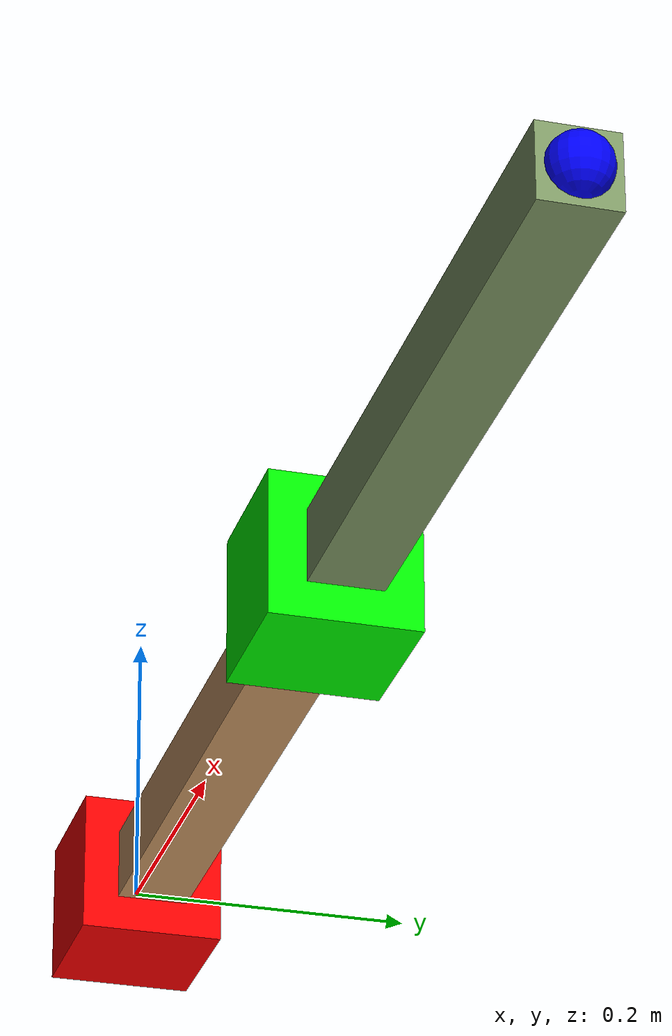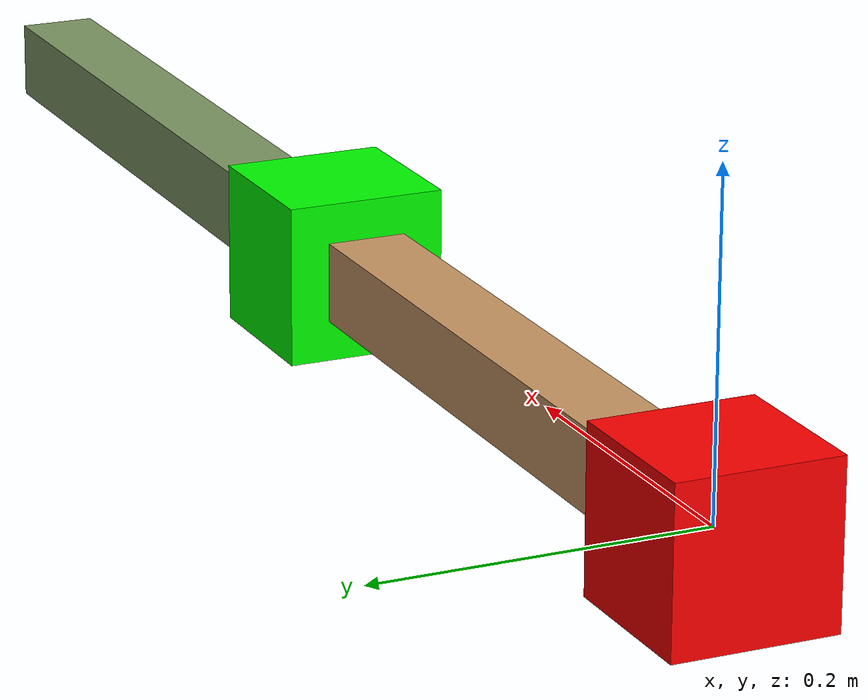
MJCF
<mujoco model="planar_2r">
    <compiler angle="radian" meshdir="assets" autolimits="true"/>
    <option integrator="implicitfast"/>

    <default>
       <general gaintype="fixed" biastype="affine" gainprm="2000" biasprm="0 -2000 -200"/>
        <default class="link">
            <geom type="capsule" size="0.05 0.25" rgba="0.8 0.6 0.4 1"/>
            </default>
    </default>

    <worldbody>
        <body name="base" pos="0 0 0">
            <geom type="box" size="0.05 0.05 0.05" rgba="1 0 0 1"/>

            <body name="link1" pos="0 0 0">
                <joint name="joint1" type="hinge" axis="0 0 1" range="-3.14 3.14"/>
                <geom type="box" size="0.025 0.025 0.25" pos="0.25 0 0" euler="0 1.57 0" rgba="0.8 0.6 0.4 1"/>

                <body name="joint_link12" pos="0.5 0 0">
                    <geom type="box" size="0.05 0.05 0.05" rgba="0 1 0 1"/>

                    <body name="link2" pos="0 0 0" euler="0 0 0">
                        <joint name="joint2" type="hinge" axis="0 0 1" range="-3.14 3.14"/>
                        <geom type="box" size="0.025 0.025 0.25" pos="0.25 0 0" euler="0 1.57 0" rgba="0.5 0.6 0.4 1"/>
                        <site name="end_effector_site" pos="0.5 0 0" size="0.02" rgba="0 0 1 1"/>
                    </body>
                </body>
            </body>
        </body>
    </worldbody>

    <actuator>
        <general name="joint1_actuator" joint="joint1" ctrlrange="-3.14 3.14" ctrllimited="true"/>
        <general name="joint2_actuator" joint="joint2" ctrlrange="-3.14 3.14" ctrllimited="true"/>
    </actuator>

    <sensor>
        <force name="end_effector_force_sensor" site="end_effector_site"/>
        <torque name="end_effector_torque_sensor" site="end_effector_site"/>
    </sensor>

    <keyframe>
        <key name="home" qpos="0 1" ctrl="0 1"/>
    </keyframe>
</mujoco>
